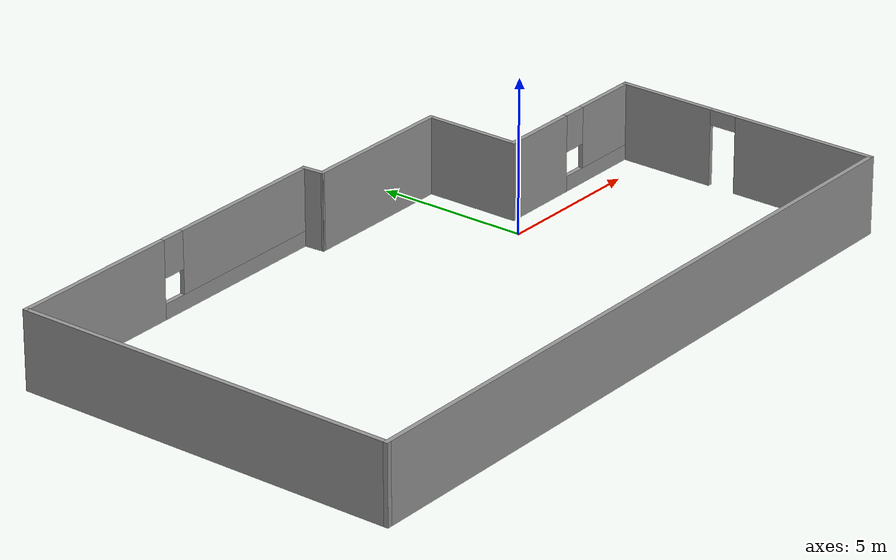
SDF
<?xml version='1.0'?>
<sdf version='1.7'>
  <model name='wall_build'>
    <pose>-4.96434 -1.78274 0 0 -0 0</pose>
    <link name='Door_1'>
      <collision name='Door_1_Collision'>
        <geometry>
          <box>
            <size>0.9 0.17 2</size>
          </box>
        </geometry>
        <pose>0 0 1 0 -0 0</pose>
      </collision>
      <visual name='Door_1_Visual'>
        <pose>0 0 1 0 -0 0</pose>
        <geometry>
          <box>
            <size>0.9 0.17 2</size>
          </box>
        </geometry>
        <material>
          <script>
            <uri>file://media/materials/scripts/gazebo.material</uri>
            <name>Gazebo/Grey</name>
          </script>
        </material>
      </visual>
      <pose>-0.491447 -6.12197 0 0 -0 0</pose>
    </link>
    <link name='Wall_0'>
      <collision name='Wall_0_Collision'>
        <geometry>
          <box>
            <size>5.25 0.15 2.5</size>
          </box>
        </geometry>
        <pose>0 0 1.25 0 -0 0</pose>
      </collision>
      <visual name='Wall_0_Visual'>
        <pose>0 0 1.25 0 -0 0</pose>
        <geometry>
          <box>
            <size>5.25 0.15 2.5</size>
          </box>
        </geometry>
        <material>
          <script>
            <uri>file://media/materials/scripts/gazebo.material</uri>
            <name>Gazebo/Grey</name>
          </script>
          <ambient>1 1 1 1</ambient>
        </material>
        <meta>
          <layer>0</layer>
        </meta>
      </visual>
      <pose>3.15 5.64724 0 0 -0 0</pose>
    </link>
    <link name='Wall_1'>
      <collision name='Wall_1_Collision'>
        <geometry>
          <box>
            <size>3.25 0.15 2.5</size>
          </box>
        </geometry>
        <pose>0 0 1.25 0 -0 0</pose>
      </collision>
      <visual name='Wall_1_Visual'>
        <pose>0 0 1.25 0 -0 0</pose>
        <geometry>
          <box>
            <size>3.25 0.15 2.5</size>
          </box>
        </geometry>
        <material>
          <script>
            <uri>file://media/materials/scripts/gazebo.material</uri>
            <name>Gazebo/Grey</name>
          </script>
          <ambient>1 1 1 1</ambient>
        </material>
        <meta>
          <layer>0</layer>
        </meta>
      </visual>
      <pose>5.7 4.09724 0 0 -0 -1.5708</pose>
    </link>
    <link name='Wall_2'>
      <pose>8.5 2.54724 0 0 -0 0</pose>
      <visual name='Wall_2_Visual_0'>
        <pose>-1.56939 0 1.25 0 -0 0</pose>
        <geometry>
          <box>
            <size>2.61121 0.15 2.5</size>
          </box>
        </geometry>
        <material>
          <script>
            <uri>file://media/materials/scripts/gazebo.material</uri>
            <name>Gazebo/Grey</name>
          </script>
          <ambient>1 1 1 1</ambient>
        </material>
        <meta>
          <layer>0</layer>
        </meta>
      </visual>
      <collision name='Wall_2_Collision_0'>
        <geometry>
          <box>
            <size>2.61121 0.15 2.5</size>
          </box>
        </geometry>
        <pose>-1.56939 0 1.25 0 -0 0</pose>
      </collision>
      <visual name='Wall_2_Visual_1'>
        <pose>1.30561 0 0.25 0 -0 0</pose>
        <geometry>
          <box>
            <size>3.13879 0.15 0.5</size>
          </box>
        </geometry>
        <material>
          <script>
            <uri>file://media/materials/scripts/gazebo.material</uri>
            <name>Gazebo/Grey</name>
          </script>
          <ambient>1 1 1 1</ambient>
        </material>
        <meta>
          <layer>0</layer>
        </meta>
      </visual>
      <collision name='Wall_2_Collision_1'>
        <geometry>
          <box>
            <size>3.13879 0.15 0.5</size>
          </box>
        </geometry>
        <pose>1.30561 0 0.25 0 -0 0</pose>
      </collision>
      <visual name='Wall_2_Visual_2'>
        <pose>1.70561 0 1.5 0 -0 0</pose>
        <geometry>
          <box>
            <size>2.33879 0.15 2</size>
          </box>
        </geometry>
        <material>
          <script>
            <uri>file://media/materials/scripts/gazebo.material</uri>
            <name>Gazebo/Grey</name>
          </script>
          <ambient>1 1 1 1</ambient>
        </material>
        <meta>
          <layer>0</layer>
        </meta>
      </visual>
      <collision name='Wall_2_Collision_2'>
        <geometry>
          <box>
            <size>2.33879 0.15 2</size>
          </box>
        </geometry>
        <pose>1.70561 0 1.5 0 -0 0</pose>
      </collision>
      <visual name='Wall_2_Visual_3'>
        <pose>0.136213 0 1.9 0 -0 0</pose>
        <geometry>
          <box>
            <size>0.8 0.15 1.2</size>
          </box>
        </geometry>
        <material>
          <script>
            <uri>file://media/materials/scripts/gazebo.material</uri>
            <name>Gazebo/Grey</name>
          </script>
          <ambient>1 1 1 1</ambient>
        </material>
        <meta>
          <layer>0</layer>
        </meta>
      </visual>
      <collision name='Wall_2_Collision_3'>
        <geometry>
          <box>
            <size>0.8 0.15 1.2</size>
          </box>
        </geometry>
        <pose>0.136213 0 1.9 0 -0 0</pose>
      </collision>
    </link>
    <link name='Wall_3'>
      <pose>11.3 -1.87776 0 0 -0 -1.5708</pose>
      <visual name='Wall_3_Visual_0'>
        <pose>-2.86477 0 1.25 0 -0 0</pose>
        <geometry>
          <box>
            <size>3.27046 0.15 2.5</size>
          </box>
        </geometry>
        <material>
          <script>
            <uri>file://media/materials/scripts/gazebo.material</uri>
            <name>Gazebo/Grey</name>
          </script>
          <ambient>1 1 1 1</ambient>
        </material>
        <meta>
          <layer>0</layer>
        </meta>
      </visual>
      <collision name='Wall_3_Collision_0'>
        <geometry>
          <box>
            <size>3.27046 0.15 2.5</size>
          </box>
        </geometry>
        <pose>-2.86477 0 1.25 0 -0 0</pose>
      </collision>
      <visual name='Wall_3_Visual_1'>
        <pose>2.08523 0 1.25 0 -0 0</pose>
        <geometry>
          <box>
            <size>4.82954 0.15 2.5</size>
          </box>
        </geometry>
        <material>
          <script>
            <uri>file://media/materials/scripts/gazebo.material</uri>
            <name>Gazebo/Grey</name>
          </script>
          <ambient>1 1 1 1</ambient>
        </material>
        <meta>
          <layer>0</layer>
        </meta>
      </visual>
      <collision name='Wall_3_Collision_1'>
        <geometry>
          <box>
            <size>4.82954 0.15 2.5</size>
          </box>
        </geometry>
        <pose>2.08523 0 1.25 0 -0 0</pose>
      </collision>
      <visual name='Wall_3_Visual_2'>
        <pose>-0.779543 0 2.25 0 -0 0</pose>
        <geometry>
          <box>
            <size>0.9 0.15 0.5</size>
          </box>
        </geometry>
        <material>
          <script>
            <uri>file://media/materials/scripts/gazebo.material</uri>
            <name>Gazebo/Grey</name>
          </script>
          <ambient>1 1 1 1</ambient>
        </material>
        <meta>
          <layer>0</layer>
        </meta>
      </visual>
      <collision name='Wall_3_Collision_2'>
        <geometry>
          <box>
            <size>0.9 0.15 0.5</size>
          </box>
        </geometry>
        <pose>-0.779543 0 2.25 0 -0 0</pose>
      </collision>
    </link>
    <link name='Wall_4'>
      <collision name='Wall_4_Collision'>
        <geometry>
          <box>
            <size>22.75 0.15 2.5</size>
          </box>
        </geometry>
        <pose>0 0 1.25 0 -0 0</pose>
      </collision>
      <visual name='Wall_4_Visual'>
        <pose>0 0 1.25 0 -0 0</pose>
        <geometry>
          <box>
            <size>22.75 0.15 2.5</size>
          </box>
        </geometry>
        <material>
          <script>
            <uri>file://media/materials/scripts/gazebo.material</uri>
            <name>Gazebo/Grey</name>
          </script>
          <ambient>1 1 1 1</ambient>
        </material>
        <meta>
          <layer>0</layer>
        </meta>
      </visual>
      <pose>0 -6.30276 0 0 -0 3.14159</pose>
    </link>
    <link name='Wall_5'>
      <collision name='Wall_5_Collision'>
        <geometry>
          <box>
            <size>12.75 0.15 2.5</size>
          </box>
        </geometry>
        <pose>0 0 1.25 0 -0 0</pose>
      </collision>
      <visual name='Wall_5_Visual'>
        <pose>0 0 1.25 0 -0 0</pose>
        <geometry>
          <box>
            <size>12.75 0.15 2.5</size>
          </box>
        </geometry>
        <material>
          <script>
            <uri>file://media/materials/scripts/gazebo.material</uri>
            <name>Gazebo/Grey</name>
          </script>
          <ambient>1 1 1 1</ambient>
        </material>
        <meta>
          <layer>0</layer>
        </meta>
      </visual>
      <pose>-11.3 -0.002765 0 0 -0 1.5708</pose>
    </link>
    <link name='Wall_6'>
      <pose>-5.375 6.29723 0 0 -0 0</pose>
      <visual name='Wall_6_Visual_0'>
        <pose>-3.16396 0 1.25 0 -0 0</pose>
        <geometry>
          <box>
            <size>5.67207 0.15 2.5</size>
          </box>
        </geometry>
        <material>
          <script>
            <uri>file://media/materials/scripts/gazebo.material</uri>
            <name>Gazebo/Grey</name>
          </script>
          <ambient>1 1 1 1</ambient>
        </material>
        <meta>
          <layer>0</layer>
        </meta>
      </visual>
      <collision name='Wall_6_Collision_0'>
        <geometry>
          <box>
            <size>5.67207 0.15 2.5</size>
          </box>
        </geometry>
        <pose>-3.16396 0 1.25 0 -0 0</pose>
      </collision>
      <visual name='Wall_6_Visual_1'>
        <pose>2.83604 0 0.25 0 -0 0</pose>
        <geometry>
          <box>
            <size>6.32793 0.15 0.5</size>
          </box>
        </geometry>
        <material>
          <script>
            <uri>file://media/materials/scripts/gazebo.material</uri>
            <name>Gazebo/Grey</name>
          </script>
          <ambient>1 1 1 1</ambient>
        </material>
        <meta>
          <layer>0</layer>
        </meta>
      </visual>
      <collision name='Wall_6_Collision_1'>
        <geometry>
          <box>
            <size>6.32793 0.15 0.5</size>
          </box>
        </geometry>
        <pose>2.83604 0 0.25 0 -0 0</pose>
      </collision>
      <visual name='Wall_6_Visual_2'>
        <pose>3.23604 0 1.5 0 -0 0</pose>
        <geometry>
          <box>
            <size>5.52793 0.15 2</size>
          </box>
        </geometry>
        <material>
          <script>
            <uri>file://media/materials/scripts/gazebo.material</uri>
            <name>Gazebo/Grey</name>
          </script>
          <ambient>1 1 1 1</ambient>
        </material>
        <meta>
          <layer>0</layer>
        </meta>
      </visual>
      <collision name='Wall_6_Collision_2'>
        <geometry>
          <box>
            <size>5.52793 0.15 2</size>
          </box>
        </geometry>
        <pose>3.23604 0 1.5 0 -0 0</pose>
      </collision>
      <visual name='Wall_6_Visual_3'>
        <pose>0.072073 0 1.9 0 -0 0</pose>
        <geometry>
          <box>
            <size>0.8 0.15 1.2</size>
          </box>
        </geometry>
        <material>
          <script>
            <uri>file://media/materials/scripts/gazebo.material</uri>
            <name>Gazebo/Grey</name>
          </script>
          <ambient>1 1 1 1</ambient>
        </material>
        <meta>
          <layer>0</layer>
        </meta>
      </visual>
      <collision name='Wall_6_Collision_3'>
        <geometry>
          <box>
            <size>0.8 0.15 1.2</size>
          </box>
        </geometry>
        <pose>0.072073 0 1.9 0 -0 0</pose>
      </collision>
    </link>
    <link name='Wall_7'>
      <collision name='Wall_7_Collision'>
        <geometry>
          <box>
            <size>0.80192 0.15 2.5</size>
          </box>
        </geometry>
        <pose>0 0 1.25 0 -0 0</pose>
      </collision>
      <visual name='Wall_7_Visual'>
        <pose>0 0 1.25 0 -0 0</pose>
        <geometry>
          <box>
            <size>0.80192 0.15 2.5</size>
          </box>
        </geometry>
        <material>
          <script>
            <uri>file://media/materials/scripts/gazebo.material</uri>
            <name>Gazebo/Grey</name>
          </script>
          <ambient>1 1 1 1</ambient>
        </material>
        <meta>
          <layer>0</layer>
        </meta>
      </visual>
      <pose>0.575 5.97224 0 0 -0 -1.49402</pose>
    </link>
    <static>1</static>
  </model>
</sdf>
